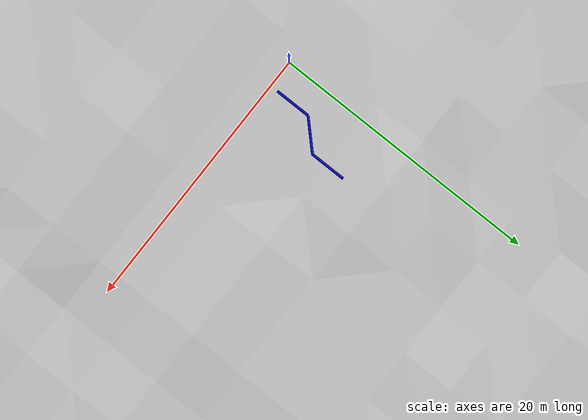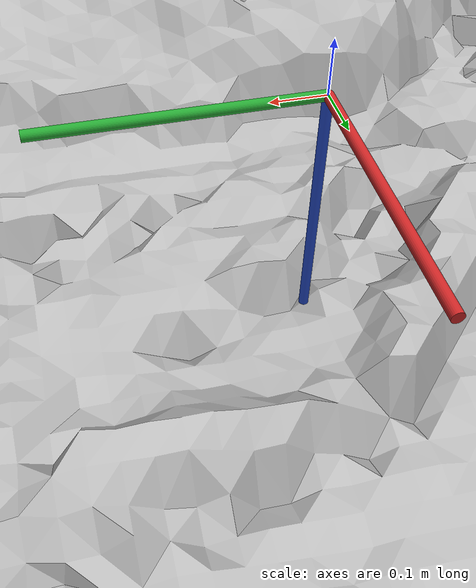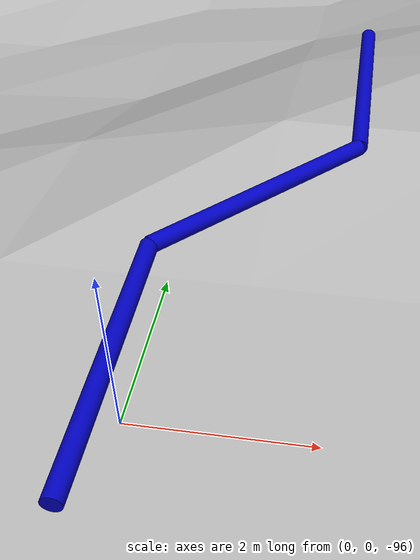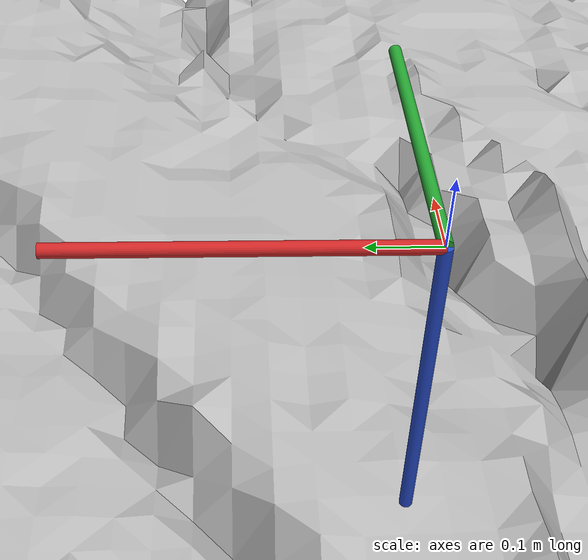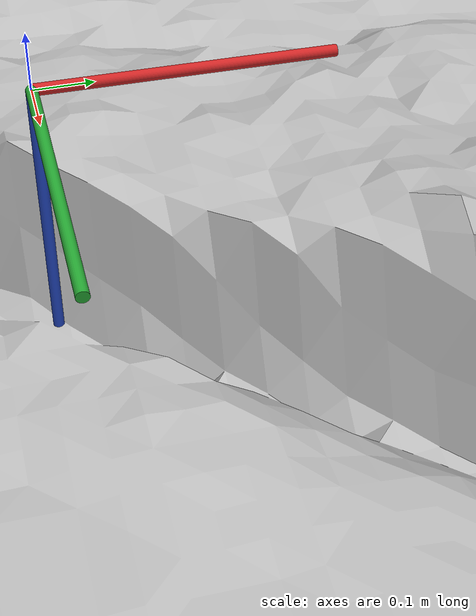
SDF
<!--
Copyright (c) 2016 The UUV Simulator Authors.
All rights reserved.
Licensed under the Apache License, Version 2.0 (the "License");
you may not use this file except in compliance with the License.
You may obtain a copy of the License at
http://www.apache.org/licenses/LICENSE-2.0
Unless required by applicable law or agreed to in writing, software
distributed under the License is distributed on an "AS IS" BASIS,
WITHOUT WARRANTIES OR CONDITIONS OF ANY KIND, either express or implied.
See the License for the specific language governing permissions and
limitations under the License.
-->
<sdf version="1.4">
 <world name="default">
  <physics name="default_physics" default="true" type="ode">
   <max_step_size>0.002</max_step_size>
   <real_time_factor>1</real_time_factor>
   <real_time_update_rate>500</real_time_update_rate>
  </physics>
  <scene>
   <ambient>0.01 0.01 0.01 1.0</ambient>
   <sky><clouds><speed>12</speed></clouds></sky>
   <fog>
    <color>0.1 0.2 0.3 1.0</color>
    <type>linear</type>
    <density>0.1</density>
    <start>10</start>
    <end>40</end>
   </fog>
   <shadows>1</shadows>
  </scene>
  <spherical_coordinates>
   <latitude_deg>56.71897669633431</latitude_deg>
   <longitude_deg>3.515625</longitude_deg>
  </spherical_coordinates>
  <light type="directional" name="sun1">
   <pose>50 0 150 0 0 0</pose>
   <diffuse>1 1 1 1</diffuse>
   <specular>.1 .1 .1 1</specular>
   <direction>0.3 0.3 -1</direction>
   <cast_shadows>false</cast_shadows>
  </light>
  <light type="directional" name="sun_diffuse">
   <pose>-50 0 -150 0 0 0</pose>
   <diffuse>0.6 0.6 0.6 1</diffuse>
   <specular>0 0 0 1</specular>
   <direction>-0.3 -0.3 -1</direction>
   <cast_shadows>false</cast_shadows>
  </light>
  <include><uri>model://ned_frame</uri></include>
  <include><uri>model://sand_heightmap</uri><pose>-20 -20 -95 0 0 1.57</pose></include>
  <include><uri>model://pipe_3</uri><name>pipe_1</name><pose>0 0 -94.955 1.57079 -0.0 0</pose></include>
  <include>
   <uri>model://pipe_3</uri>
   <name>pipe_2</name>
   <pose>1.06 2.56 -94.955 1.57079 0.0 -0.785</pose>
  </include>
  <include><uri>model://pipe_3</uri><name>pipe_3</name><pose>2.12 5.12 -94.955 1.57079 0.0 0.0</pose></include>
  <plugin name="underwater_current_plugin" filename="libuuv_underwater_current_ros_plugin.so">
   <namespace>hydrodynamics</namespace>
   <constant_current>
    <topic>current_velocity</topic>
    <velocity><mean>0</mean><min>0</min><max>5</max><mu>0.0</mu><noiseAmp>0.0</noiseAmp></velocity>
    <horizontal_angle>
     <mean>0</mean>
     <min>-3.141592653589793238</min>
     <max>3.141592653589793238</max>
     <mu>0.0</mu>
     <noiseAmp>0.0</noiseAmp>
    </horizontal_angle>
    <vertical_angle>
     <mean>0</mean>
     <min>-3.141592653589793238</min>
     <max>3.141592653589793238</max>
     <mu>0.0</mu>
     <noiseAmp>0.0</noiseAmp>
    </vertical_angle>
   </constant_current>
  </plugin>
  <plugin name="sc_interface" filename="libuuv_sc_ros_interface_plugin.so"/>
 </world>
</sdf>

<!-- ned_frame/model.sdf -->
<sdf version='1.5'>
    <model name="world_ned">

      <pose>0 0 0 0 0 0</pose>
      <static>true</static>

      <link name="world_ned">
        <gravity>0</gravity>
        <pose>0 0 0 3.14159265359 0 1.5707963267948966</pose>

        <visual name="N_visual">
          <pose>0.25 0 0 1.5707963267948966 0 1.5707963267948966</pose>
          <geometry>
            <cylinder>
              <radius>0.01</radius>
              <length>0.5</length>
            </cylinder>
          </geometry>
          <material>
            <script>
              <uri>file://media/materials/scripts/gazebo.material</uri>
              <name>Gazebo/Red</name>
            </script>
          </material>
        </visual>

        <visual name="E_visual">
          <pose>0 0.25 0 1.5707963267948966 0 0</pose>
          <geometry>
            <cylinder>
              <radius>0.01</radius>
              <length>0.5</length>
            </cylinder>
          </geometry>
          <material>
            <script>
              <uri>file://media/materials/scripts/gazebo.material</uri>
              <name>Gazebo/Green</name>
            </script>
          </material>
        </visual>

        <visual name="D_visual">
          <pose>0 0 0.25 0 0 0</pose>
          <geometry>
            <cylinder>
              <radius>0.01</radius>
              <length>0.5</length>
            </cylinder>
          </geometry>
          <material>
            <script>
              <uri>file://media/materials/scripts/gazebo.material</uri>
              <name>Gazebo/Blue</name>
            </script>
          </material>
        </visual>
      </link>
    </model>
</sdf>

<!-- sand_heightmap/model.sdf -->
<sdf version="1.5">
  <model name="sand_heightmap">
    <static>true</static>
    <link name="link">
      <collision name="ground">
        <pose>0 0 0 0 0 0</pose>
        <geometry>
          <mesh><uri>model://sand_heightmap/meshes/heightmap.dae</uri></mesh>
        </geometry>
      </collision>

      <visual name="ground_sand">
        <cast_shadows>false</cast_shadows>
        <pose>0 0 0 0 0 0</pose>
        <geometry>
          <mesh><uri>model://sand_heightmap/meshes/heightmap.dae</uri></mesh>
        </geometry>
        <material>
          <script>
            <uri>file://Media/materials/scripts/sand.material</uri>
            <name>UUVSimulator/SandAndStones</name>
          </script>
          <emissive>
            0.6 0.6 0.6 1.0
          </emissive>
        </material>
      </visual>
    </link>
  </model>
</sdf>

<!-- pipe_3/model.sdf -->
<sdf version='1.7'>
    <model name='pipe_3'>
      <link name='link'>
        <inertial>
          <mass>6126.11</mass>
          <inertia>
            <ixx>893.39</ixx>
            <ixy>0</ixy>
            <ixz>0</ixz>
            <iyy>893.39</iyy>
            <iyz>0</iyz>
            <izz>765.763</izz>
          </inertia>
          <pose>0 0 0 0 -0 0</pose>
        </inertial>
        <self_collide>0</self_collide>
        <enable_wind>0</enable_wind>
        <kinematic>0</kinematic>
        <pose>0 0 -0 0 -0 0</pose>
        <gravity>1</gravity>
        <visual name='visual'>
          <geometry>
            <cylinder>
              <radius>0.1</radius>
              <length>3</length>
            </cylinder>
          </geometry>
          <material>
            <script>
              <name>Gazebo/Grey</name>
              <uri>file://media/materials/scripts/gazebo.material</uri>
            </script>
            <shader type='pixel'>
              <normal_map>__default__</normal_map>
            </shader>
            <ambient>0.0 0.0 0.3 1</ambient>
            <diffuse>0.0 0.0 0.75 1</diffuse>
            <specular>0.01 0.01 0.01 1</specular>
            <emissive>0 0 0 1</emissive>
          </material>
          <pose>0 0 0 0 -0 0</pose>
          <transparency>0</transparency>
          <cast_shadows>1</cast_shadows>
        </visual>
        <collision name='collision'>
          <laser_retro>0</laser_retro>
          <max_contacts>10</max_contacts>
          <pose>0 0 0 0 -0 0</pose>
          <geometry>
            <cylinder>
              <radius>0.1</radius>
              <length>3</length>
            </cylinder>
          </geometry>
          <surface>
            <friction>
              <ode>
                <mu>1</mu>
                <mu2>1</mu2>
                <fdir1>0 0 0</fdir1>
                <slip1>0</slip1>
                <slip2>0</slip2>
              </ode>
              <torsional>
                <coefficient>1</coefficient>
                <patch_radius>0</patch_radius>
                <surface_radius>0</surface_radius>
                <use_patch_radius>1</use_patch_radius>
                <ode>
                  <slip>0</slip>
                </ode>
              </torsional>
            </friction>
            <bounce>
              <restitution_coefficient>0</restitution_coefficient>
              <threshold>1e+06</threshold>
            </bounce>
            <contact>
              <collide_without_contact>0</collide_without_contact>
              <collide_without_contact_bitmask>1</collide_without_contact_bitmask>
              <collide_bitmask>1</collide_bitmask>
              <ode>
                <soft_cfm>0</soft_cfm>
                <soft_erp>0.2</soft_erp>
                <kp>1e+13</kp>
                <kd>1</kd>
                <max_vel>0.01</max_vel>
                <min_depth>0</min_depth>
              </ode>
              <bullet>
                <split_impulse>1</split_impulse>
                <split_impulse_penetration_threshold>-0.01</split_impulse_penetration_threshold>
                <soft_cfm>0</soft_cfm>
                <soft_erp>0.2</soft_erp>
                <kp>1e+13</kp>
                <kd>1</kd>
              </bullet>
            </contact>
          </surface>
        </collision>
      </link>
      <static>1</static>
      <allow_auto_disable>1</allow_auto_disable>
      <pose>0.277397 -0.141878 0 0 -0 0</pose>
    </model>
</sdf>
